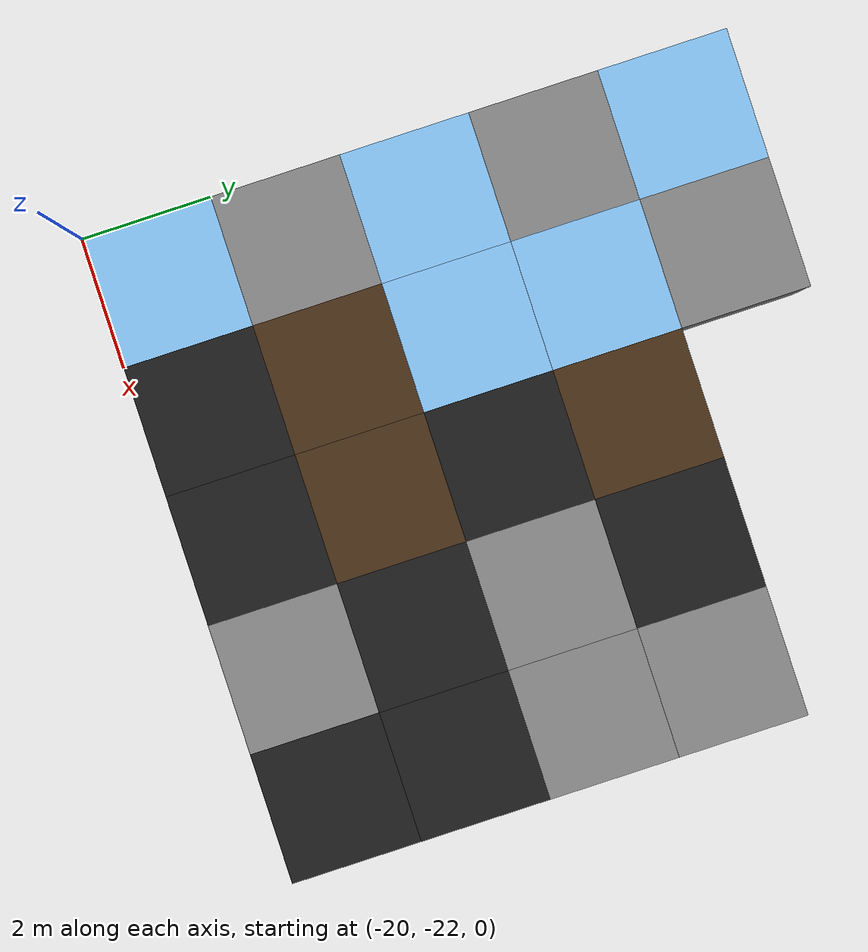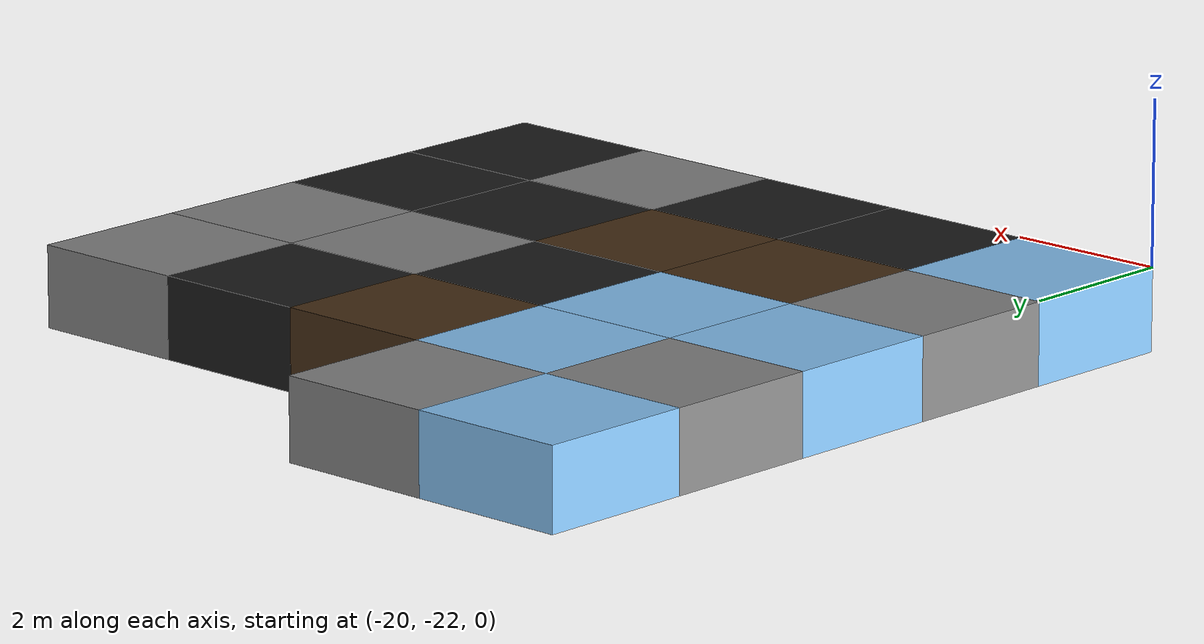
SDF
<sdf version="1.5">
 <world name="squares_example">
  <model name="tile_6_5">
   <static>true</static>
   <pose>-19.000 -21.000 -0.500 0 0 0</pose>
   <link name="link">
    <collision name="col">
     <geometry><box><size>2.0 2.0 1.0</size></box></geometry>
     <surface>
      <friction>
       <ode><mu>0.03</mu><mu2>0.02</mu2><fdir1>1 0 0</fdir1><slip1>0.03</slip1><slip2>0.03</slip2></ode>
       <torsional>
        <coefficient>0.005</coefficient>
        <use_patch_radius>false</use_patch_radius>
        <surface_radius>0.12</surface_radius>
        <ode><slip>0.01</slip></ode>
       </torsional>
      </friction>
      <bounce><restitution_coefficient>0.0</restitution_coefficient><threshold>0.1</threshold></bounce>
      <contact>
       <ode><kp>10000000.0</kp><kd>1000.0</kd><max_vel>0.01</max_vel><min_depth>0.0</min_depth></ode>
      </contact>
     </surface>
    </collision>
    <visual name="visual">
     <geometry><box><size>2.0 2.0 1.0</size></box></geometry>
     <material>
      <diffuse>0.55 0.80 1.00 1</diffuse>
      <ambient>0 0 0 0</ambient>
      <specular>0 0 0 1</specular>
      <emissive>0 0 0 1</emissive>
     </material>
    </visual>
   </link>
  </model>
  <model name="tile_7_5">
   <static>true</static>
   <pose>-17.000 -21.000 -0.500 0 0 0</pose>
   <link name="link">
    <collision name="col">
     <geometry><box><size>2.0 2.0 1.0</size></box></geometry>
     <surface>
      <friction>
       <ode><mu>0.4</mu><mu2>0.15</mu2><fdir1>1 0 0</fdir1><slip1>0.0</slip1><slip2>0.0</slip2></ode>
       <torsional>
        <coefficient>0.03</coefficient>
        <use_patch_radius>false</use_patch_radius>
        <surface_radius>0.12</surface_radius>
        <ode><slip>0.0</slip></ode>
       </torsional>
      </friction>
      <bounce><restitution_coefficient>0.0</restitution_coefficient><threshold>0.1</threshold></bounce>
      <contact>
       <ode><kp>1000000000.0</kp><kd>1000000.0</kd><max_vel>0.01</max_vel><min_depth>0.0</min_depth></ode>
      </contact>
     </surface>
    </collision>
    <visual name="visual">
     <geometry><box><size>2.0 2.0 1.0</size></box></geometry>
     <material>
      <diffuse>0.12 0.12 0.12 1</diffuse>
      <ambient>0 0 0 0</ambient>
      <specular>0 0 0 1</specular>
      <emissive>0 0 0 1</emissive>
     </material>
    </visual>
   </link>
  </model>
  <model name="tile_8_5">
   <static>true</static>
   <pose>-15.000 -21.000 -0.500 0 0 0</pose>
   <link name="link">
    <collision name="col">
     <geometry><box><size>2.0 2.0 1.0</size></box></geometry>
     <surface>
      <friction>
       <ode><mu>0.4</mu><mu2>0.15</mu2><fdir1>1 0 0</fdir1><slip1>0.0</slip1><slip2>0.0</slip2></ode>
       <torsional>
        <coefficient>0.03</coefficient>
        <use_patch_radius>false</use_patch_radius>
        <surface_radius>0.12</surface_radius>
        <ode><slip>0.0</slip></ode>
       </torsional>
      </friction>
      <bounce><restitution_coefficient>0.0</restitution_coefficient><threshold>0.1</threshold></bounce>
      <contact>
       <ode><kp>1000000000.0</kp><kd>1000000.0</kd><max_vel>0.01</max_vel><min_depth>0.0</min_depth></ode>
      </contact>
     </surface>
    </collision>
    <visual name="visual">
     <geometry><box><size>2.0 2.0 1.0</size></box></geometry>
     <material>
      <diffuse>0.12 0.12 0.12 1</diffuse>
      <ambient>0 0 0 0</ambient>
      <specular>0 0 0 1</specular>
      <emissive>0 0 0 1</emissive>
     </material>
    </visual>
   </link>
  </model>
  <model name="tile_9_5">
   <static>true</static>
   <pose>-13.000 -21.000 -0.500 0 0 0</pose>
   <link name="link">
    <collision name="col">
     <geometry><box><size>2.0 2.0 1.0</size></box></geometry>
     <surface>
      <friction>
       <ode><mu>0.8</mu><mu2>0.3</mu2><fdir1>1 0 0</fdir1><slip1>0.0</slip1><slip2>0.0</slip2></ode>
       <torsional>
        <coefficient>0.03</coefficient>
        <use_patch_radius>false</use_patch_radius>
        <surface_radius>0.12</surface_radius>
        <ode><slip>0.0</slip></ode>
       </torsional>
      </friction>
      <bounce><restitution_coefficient>0.0</restitution_coefficient><threshold>0.1</threshold></bounce>
      <contact>
       <ode><kp>10000000000.0</kp><kd>10000000.0</kd><max_vel>0.01</max_vel><min_depth>0.0</min_depth></ode>
      </contact>
     </surface>
    </collision>
    <visual name="visual">
     <geometry><box><size>2.0 2.0 1.0</size></box></geometry>
     <material>
      <diffuse>0.55 0.55 0.55 1</diffuse>
      <ambient>0 0 0 0</ambient>
      <specular>0 0 0 1</specular>
      <emissive>0 0 0 1</emissive>
     </material>
    </visual>
   </link>
  </model>
  <model name="tile_10_5">
   <static>true</static>
   <pose>-11.000 -21.000 -0.500 0 0 0</pose>
   <link name="link">
    <collision name="col">
     <geometry><box><size>2.0 2.0 1.0</size></box></geometry>
     <surface>
      <friction>
       <ode><mu>0.4</mu><mu2>0.15</mu2><fdir1>1 0 0</fdir1><slip1>0.0</slip1><slip2>0.0</slip2></ode>
       <torsional>
        <coefficient>0.03</coefficient>
        <use_patch_radius>false</use_patch_radius>
        <surface_radius>0.12</surface_radius>
        <ode><slip>0.0</slip></ode>
       </torsional>
      </friction>
      <bounce><restitution_coefficient>0.0</restitution_coefficient><threshold>0.1</threshold></bounce>
      <contact>
       <ode><kp>1000000000.0</kp><kd>1000000.0</kd><max_vel>0.01</max_vel><min_depth>0.0</min_depth></ode>
      </contact>
     </surface>
    </collision>
    <visual name="visual">
     <geometry><box><size>2.0 2.0 1.0</size></box></geometry>
     <material>
      <diffuse>0.12 0.12 0.12 1</diffuse>
      <ambient>0 0 0 0</ambient>
      <specular>0 0 0 1</specular>
      <emissive>0 0 0 1</emissive>
     </material>
    </visual>
   </link>
  </model>
  <model name="tile_6_6">
   <static>true</static>
   <pose>-19.000 -19.000 -0.500 0 0 0</pose>
   <link name="link">
    <collision name="col">
     <geometry><box><size>2.0 2.0 1.0</size></box></geometry>
     <surface>
      <friction>
       <ode><mu>0.8</mu><mu2>0.3</mu2><fdir1>1 0 0</fdir1><slip1>0.0</slip1><slip2>0.0</slip2></ode>
       <torsional>
        <coefficient>0.03</coefficient>
        <use_patch_radius>false</use_patch_radius>
        <surface_radius>0.12</surface_radius>
        <ode><slip>0.0</slip></ode>
       </torsional>
      </friction>
      <bounce><restitution_coefficient>0.0</restitution_coefficient><threshold>0.1</threshold></bounce>
      <contact>
       <ode><kp>10000000000.0</kp><kd>10000000.0</kd><max_vel>0.01</max_vel><min_depth>0.0</min_depth></ode>
      </contact>
     </surface>
    </collision>
    <visual name="visual">
     <geometry><box><size>2.0 2.0 1.0</size></box></geometry>
     <material>
      <diffuse>0.55 0.55 0.55 1</diffuse>
      <ambient>0 0 0 0</ambient>
      <specular>0 0 0 1</specular>
      <emissive>0 0 0 1</emissive>
     </material>
    </visual>
   </link>
  </model>
  <model name="tile_7_6">
   <static>true</static>
   <pose>-17.000 -19.000 -0.500 0 0 0</pose>
   <link name="link">
    <collision name="col">
     <geometry><box><size>2.0 2.0 1.0</size></box></geometry>
     <surface>
      <friction>
       <ode><mu>0.6</mu><mu2>0.4</mu2><fdir1>1 0 0</fdir1><slip1>0.08</slip1><slip2>0.08</slip2></ode>
       <torsional>
        <coefficient>0.03</coefficient>
        <use_patch_radius>false</use_patch_radius>
        <surface_radius>0.12</surface_radius>
        <ode><slip>0.0</slip></ode>
       </torsional>
      </friction>
      <bounce><restitution_coefficient>0.0</restitution_coefficient><threshold>0.1</threshold></bounce>
      <contact>
       <ode><kp>1000000.0</kp><kd>10000.0</kd><max_vel>0.01</max_vel><min_depth>0.0</min_depth></ode>
      </contact>
     </surface>
    </collision>
    <visual name="visual">
     <geometry><box><size>2.0 2.0 1.0</size></box></geometry>
     <material>
      <diffuse>0.30 0.20 0.10 1</diffuse>
      <ambient>0 0 0 0</ambient>
      <specular>0 0 0 1</specular>
      <emissive>0 0 0 1</emissive>
     </material>
    </visual>
   </link>
  </model>
  <model name="tile_8_6">
   <static>true</static>
   <pose>-15.000 -19.000 -0.500 0 0 0</pose>
   <link name="link">
    <collision name="col">
     <geometry><box><size>2.0 2.0 1.0</size></box></geometry>
     <surface>
      <friction>
       <ode><mu>0.6</mu><mu2>0.4</mu2><fdir1>1 0 0</fdir1><slip1>0.08</slip1><slip2>0.08</slip2></ode>
       <torsional>
        <coefficient>0.03</coefficient>
        <use_patch_radius>false</use_patch_radius>
        <surface_radius>0.12</surface_radius>
        <ode><slip>0.0</slip></ode>
       </torsional>
      </friction>
      <bounce><restitution_coefficient>0.0</restitution_coefficient><threshold>0.1</threshold></bounce>
      <contact>
       <ode><kp>1000000.0</kp><kd>10000.0</kd><max_vel>0.01</max_vel><min_depth>0.0</min_depth></ode>
      </contact>
     </surface>
    </collision>
    <visual name="visual">
     <geometry><box><size>2.0 2.0 1.0</size></box></geometry>
     <material>
      <diffuse>0.30 0.20 0.10 1</diffuse>
      <ambient>0 0 0 0</ambient>
      <specular>0 0 0 1</specular>
      <emissive>0 0 0 1</emissive>
     </material>
    </visual>
   </link>
  </model>
  <model name="tile_9_6">
   <static>true</static>
   <pose>-13.000 -19.000 -0.500 0 0 0</pose>
   <link name="link">
    <collision name="col">
     <geometry><box><size>2.0 2.0 1.0</size></box></geometry>
     <surface>
      <friction>
       <ode><mu>0.4</mu><mu2>0.15</mu2><fdir1>1 0 0</fdir1><slip1>0.0</slip1><slip2>0.0</slip2></ode>
       <torsional>
        <coefficient>0.03</coefficient>
        <use_patch_radius>false</use_patch_radius>
        <surface_radius>0.12</surface_radius>
        <ode><slip>0.0</slip></ode>
       </torsional>
      </friction>
      <bounce><restitution_coefficient>0.0</restitution_coefficient><threshold>0.1</threshold></bounce>
      <contact>
       <ode><kp>1000000000.0</kp><kd>1000000.0</kd><max_vel>0.01</max_vel><min_depth>0.0</min_depth></ode>
      </contact>
     </surface>
    </collision>
    <visual name="visual">
     <geometry><box><size>2.0 2.0 1.0</size></box></geometry>
     <material>
      <diffuse>0.12 0.12 0.12 1</diffuse>
      <ambient>0 0 0 0</ambient>
      <specular>0 0 0 1</specular>
      <emissive>0 0 0 1</emissive>
     </material>
    </visual>
   </link>
  </model>
  <model name="tile_10_6">
   <static>true</static>
   <pose>-11.000 -19.000 -0.500 0 0 0</pose>
   <link name="link">
    <collision name="col">
     <geometry><box><size>2.0 2.0 1.0</size></box></geometry>
     <surface>
      <friction>
       <ode><mu>0.4</mu><mu2>0.15</mu2><fdir1>1 0 0</fdir1><slip1>0.0</slip1><slip2>0.0</slip2></ode>
       <torsional>
        <coefficient>0.03</coefficient>
        <use_patch_radius>false</use_patch_radius>
        <surface_radius>0.12</surface_radius>
        <ode><slip>0.0</slip></ode>
       </torsional>
      </friction>
      <bounce><restitution_coefficient>0.0</restitution_coefficient><threshold>0.1</threshold></bounce>
      <contact>
       <ode><kp>1000000000.0</kp><kd>1000000.0</kd><max_vel>0.01</max_vel><min_depth>0.0</min_depth></ode>
      </contact>
     </surface>
    </collision>
    <visual name="visual">
     <geometry><box><size>2.0 2.0 1.0</size></box></geometry>
     <material>
      <diffuse>0.12 0.12 0.12 1</diffuse>
      <ambient>0 0 0 0</ambient>
      <specular>0 0 0 1</specular>
      <emissive>0 0 0 1</emissive>
     </material>
    </visual>
   </link>
  </model>
  <model name="tile_6_7">
   <static>true</static>
   <pose>-19.000 -17.000 -0.500 0 0 0</pose>
   <link name="link">
    <collision name="col">
     <geometry><box><size>2.0 2.0 1.0</size></box></geometry>
     <surface>
      <friction>
       <ode><mu>0.03</mu><mu2>0.02</mu2><fdir1>1 0 0</fdir1><slip1>0.03</slip1><slip2>0.03</slip2></ode>
       <torsional>
        <coefficient>0.005</coefficient>
        <use_patch_radius>false</use_patch_radius>
        <surface_radius>0.12</surface_radius>
        <ode><slip>0.01</slip></ode>
       </torsional>
      </friction>
      <bounce><restitution_coefficient>0.0</restitution_coefficient><threshold>0.1</threshold></bounce>
      <contact>
       <ode><kp>10000000.0</kp><kd>1000.0</kd><max_vel>0.01</max_vel><min_depth>0.0</min_depth></ode>
      </contact>
     </surface>
    </collision>
    <visual name="visual">
     <geometry><box><size>2.0 2.0 1.0</size></box></geometry>
     <material>
      <diffuse>0.55 0.80 1.00 1</diffuse>
      <ambient>0 0 0 0</ambient>
      <specular>0 0 0 1</specular>
      <emissive>0 0 0 1</emissive>
     </material>
    </visual>
   </link>
  </model>
  <model name="tile_7_7">
   <static>true</static>
   <pose>-17.000 -17.000 -0.500 0 0 0</pose>
   <link name="link">
    <collision name="col">
     <geometry><box><size>2.0 2.0 1.0</size></box></geometry>
     <surface>
      <friction>
       <ode><mu>0.03</mu><mu2>0.02</mu2><fdir1>1 0 0</fdir1><slip1>0.03</slip1><slip2>0.03</slip2></ode>
       <torsional>
        <coefficient>0.005</coefficient>
        <use_patch_radius>false</use_patch_radius>
        <surface_radius>0.12</surface_radius>
        <ode><slip>0.01</slip></ode>
       </torsional>
      </friction>
      <bounce><restitution_coefficient>0.0</restitution_coefficient><threshold>0.1</threshold></bounce>
      <contact>
       <ode><kp>10000000.0</kp><kd>1000.0</kd><max_vel>0.01</max_vel><min_depth>0.0</min_depth></ode>
      </contact>
     </surface>
    </collision>
    <visual name="visual">
     <geometry><box><size>2.0 2.0 1.0</size></box></geometry>
     <material>
      <diffuse>0.55 0.80 1.00 1</diffuse>
      <ambient>0 0 0 0</ambient>
      <specular>0 0 0 1</specular>
      <emissive>0 0 0 1</emissive>
     </material>
    </visual>
   </link>
  </model>
  <model name="tile_8_7">
   <static>true</static>
   <pose>-15.000 -17.000 -0.500 0 0 0</pose>
   <link name="link">
    <collision name="col">
     <geometry><box><size>2.0 2.0 1.0</size></box></geometry>
     <surface>
      <friction>
       <ode><mu>0.4</mu><mu2>0.15</mu2><fdir1>1 0 0</fdir1><slip1>0.0</slip1><slip2>0.0</slip2></ode>
       <torsional>
        <coefficient>0.03</coefficient>
        <use_patch_radius>false</use_patch_radius>
        <surface_radius>0.12</surface_radius>
        <ode><slip>0.0</slip></ode>
       </torsional>
      </friction>
      <bounce><restitution_coefficient>0.0</restitution_coefficient><threshold>0.1</threshold></bounce>
      <contact>
       <ode><kp>1000000000.0</kp><kd>1000000.0</kd><max_vel>0.01</max_vel><min_depth>0.0</min_depth></ode>
      </contact>
     </surface>
    </collision>
    <visual name="visual">
     <geometry><box><size>2.0 2.0 1.0</size></box></geometry>
     <material>
      <diffuse>0.12 0.12 0.12 1</diffuse>
      <ambient>0 0 0 0</ambient>
      <specular>0 0 0 1</specular>
      <emissive>0 0 0 1</emissive>
     </material>
    </visual>
   </link>
  </model>
  <model name="tile_9_7">
   <static>true</static>
   <pose>-13.000 -17.000 -0.500 0 0 0</pose>
   <link name="link">
    <collision name="col">
     <geometry><box><size>2.0 2.0 1.0</size></box></geometry>
     <surface>
      <friction>
       <ode><mu>0.8</mu><mu2>0.3</mu2><fdir1>1 0 0</fdir1><slip1>0.0</slip1><slip2>0.0</slip2></ode>
       <torsional>
        <coefficient>0.03</coefficient>
        <use_patch_radius>false</use_patch_radius>
        <surface_radius>0.12</surface_radius>
        <ode><slip>0.0</slip></ode>
       </torsional>
      </friction>
      <bounce><restitution_coefficient>0.0</restitution_coefficient><threshold>0.1</threshold></bounce>
      <contact>
       <ode><kp>10000000000.0</kp><kd>10000000.0</kd><max_vel>0.01</max_vel><min_depth>0.0</min_depth></ode>
      </contact>
     </surface>
    </collision>
    <visual name="visual">
     <geometry><box><size>2.0 2.0 1.0</size></box></geometry>
     <material>
      <diffuse>0.55 0.55 0.55 1</diffuse>
      <ambient>0 0 0 0</ambient>
      <specular>0 0 0 1</specular>
      <emissive>0 0 0 1</emissive>
     </material>
    </visual>
   </link>
  </model>
  <model name="tile_10_7">
   <static>true</static>
   <pose>-11.000 -17.000 -0.500 0 0 0</pose>
   <link name="link">
    <collision name="col">
     <geometry><box><size>2.0 2.0 1.0</size></box></geometry>
     <surface>
      <friction>
       <ode><mu>0.8</mu><mu2>0.3</mu2><fdir1>1 0 0</fdir1><slip1>0.0</slip1><slip2>0.0</slip2></ode>
       <torsional>
        <coefficient>0.03</coefficient>
        <use_patch_radius>false</use_patch_radius>
        <surface_radius>0.12</surface_radius>
        <ode><slip>0.0</slip></ode>
       </torsional>
      </friction>
      <bounce><restitution_coefficient>0.0</restitution_coefficient><threshold>0.1</threshold></bounce>
      <contact>
       <ode><kp>10000000000.0</kp><kd>10000000.0</kd><max_vel>0.01</max_vel><min_depth>0.0</min_depth></ode>
      </contact>
     </surface>
    </collision>
    <visual name="visual">
     <geometry><box><size>2.0 2.0 1.0</size></box></geometry>
     <material>
      <diffuse>0.55 0.55 0.55 1</diffuse>
      <ambient>0 0 0 0</ambient>
      <specular>0 0 0 1</specular>
      <emissive>0 0 0 1</emissive>
     </material>
    </visual>
   </link>
  </model>
  <model name="tile_6_8">
   <static>true</static>
   <pose>-19.000 -15.000 -0.500 0 0 0</pose>
   <link name="link">
    <collision name="col">
     <geometry><box><size>2.0 2.0 1.0</size></box></geometry>
     <surface>
      <friction>
       <ode><mu>0.8</mu><mu2>0.3</mu2><fdir1>1 0 0</fdir1><slip1>0.0</slip1><slip2>0.0</slip2></ode>
       <torsional>
        <coefficient>0.03</coefficient>
        <use_patch_radius>false</use_patch_radius>
        <surface_radius>0.12</surface_radius>
        <ode><slip>0.0</slip></ode>
       </torsional>
      </friction>
      <bounce><restitution_coefficient>0.0</restitution_coefficient><threshold>0.1</threshold></bounce>
      <contact>
       <ode><kp>10000000000.0</kp><kd>10000000.0</kd><max_vel>0.01</max_vel><min_depth>0.0</min_depth></ode>
      </contact>
     </surface>
    </collision>
    <visual name="visual">
     <geometry><box><size>2.0 2.0 1.0</size></box></geometry>
     <material>
      <diffuse>0.55 0.55 0.55 1</diffuse>
      <ambient>0 0 0 0</ambient>
      <specular>0 0 0 1</specular>
      <emissive>0 0 0 1</emissive>
     </material>
    </visual>
   </link>
  </model>
  <model name="tile_7_8">
   <static>true</static>
   <pose>-17.000 -15.000 -0.500 0 0 0</pose>
   <link name="link">
    <collision name="col">
     <geometry><box><size>2.0 2.0 1.0</size></box></geometry>
     <surface>
      <friction>
       <ode><mu>0.03</mu><mu2>0.02</mu2><fdir1>1 0 0</fdir1><slip1>0.03</slip1><slip2>0.03</slip2></ode>
       <torsional>
        <coefficient>0.005</coefficient>
        <use_patch_radius>false</use_patch_radius>
        <surface_radius>0.12</surface_radius>
        <ode><slip>0.01</slip></ode>
       </torsional>
      </friction>
      <bounce><restitution_coefficient>0.0</restitution_coefficient><threshold>0.1</threshold></bounce>
      <contact>
       <ode><kp>10000000.0</kp><kd>1000.0</kd><max_vel>0.01</max_vel><min_depth>0.0</min_depth></ode>
      </contact>
     </surface>
    </collision>
    <visual name="visual">
     <geometry><box><size>2.0 2.0 1.0</size></box></geometry>
     <material>
      <diffuse>0.55 0.80 1.00 1</diffuse>
      <ambient>0 0 0 0</ambient>
      <specular>0 0 0 1</specular>
      <emissive>0 0 0 1</emissive>
     </material>
    </visual>
   </link>
  </model>
  <model name="tile_8_8">
   <static>true</static>
   <pose>-15.000 -15.000 -0.500 0 0 0</pose>
   <link name="link">
    <collision name="col">
     <geometry><box><size>2.0 2.0 1.0</size></box></geometry>
     <surface>
      <friction>
       <ode><mu>0.6</mu><mu2>0.4</mu2><fdir1>1 0 0</fdir1><slip1>0.08</slip1><slip2>0.08</slip2></ode>
       <torsional>
        <coefficient>0.03</coefficient>
        <use_patch_radius>false</use_patch_radius>
        <surface_radius>0.12</surface_radius>
        <ode><slip>0.0</slip></ode>
       </torsional>
      </friction>
      <bounce><restitution_coefficient>0.0</restitution_coefficient><threshold>0.1</threshold></bounce>
      <contact>
       <ode><kp>1000000.0</kp><kd>10000.0</kd><max_vel>0.01</max_vel><min_depth>0.0</min_depth></ode>
      </contact>
     </surface>
    </collision>
    <visual name="visual">
     <geometry><box><size>2.0 2.0 1.0</size></box></geometry>
     <material>
      <diffuse>0.30 0.20 0.10 1</diffuse>
      <ambient>0 0 0 0</ambient>
      <specular>0 0 0 1</specular>
      <emissive>0 0 0 1</emissive>
     </material>
    </visual>
   </link>
  </model>
  <model name="tile_9_8">
   <static>true</static>
   <pose>-13.000 -15.000 -0.500 0 0 0</pose>
   <link name="link">
    <collision name="col">
     <geometry><box><size>2.0 2.0 1.0</size></box></geometry>
     <surface>
      <friction>
       <ode><mu>0.4</mu><mu2>0.15</mu2><fdir1>1 0 0</fdir1><slip1>0.0</slip1><slip2>0.0</slip2></ode>
       <torsional>
        <coefficient>0.03</coefficient>
        <use_patch_radius>false</use_patch_radius>
        <surface_radius>0.12</surface_radius>
        <ode><slip>0.0</slip></ode>
       </torsional>
      </friction>
      <bounce><restitution_coefficient>0.0</restitution_coefficient><threshold>0.1</threshold></bounce>
      <contact>
       <ode><kp>1000000000.0</kp><kd>1000000.0</kd><max_vel>0.01</max_vel><min_depth>0.0</min_depth></ode>
      </contact>
     </surface>
    </collision>
    <visual name="visual">
     <geometry><box><size>2.0 2.0 1.0</size></box></geometry>
     <material>
      <diffuse>0.12 0.12 0.12 1</diffuse>
      <ambient>0 0 0 0</ambient>
      <specular>0 0 0 1</specular>
      <emissive>0 0 0 1</emissive>
     </material>
    </visual>
   </link>
  </model>
  <model name="tile_10_8">
   <static>true</static>
   <pose>-11.000 -15.000 -0.500 0 0 0</pose>
   <link name="link">
    <collision name="col">
     <geometry><box><size>2.0 2.0 1.0</size></box></geometry>
     <surface>
      <friction>
       <ode><mu>0.8</mu><mu2>0.3</mu2><fdir1>1 0 0</fdir1><slip1>0.0</slip1><slip2>0.0</slip2></ode>
       <torsional>
        <coefficient>0.03</coefficient>
        <use_patch_radius>false</use_patch_radius>
        <surface_radius>0.12</surface_radius>
        <ode><slip>0.0</slip></ode>
       </torsional>
      </friction>
      <bounce><restitution_coefficient>0.0</restitution_coefficient><threshold>0.1</threshold></bounce>
      <contact>
       <ode><kp>10000000000.0</kp><kd>10000000.0</kd><max_vel>0.01</max_vel><min_depth>0.0</min_depth></ode>
      </contact>
     </surface>
    </collision>
    <visual name="visual">
     <geometry><box><size>2.0 2.0 1.0</size></box></geometry>
     <material>
      <diffuse>0.55 0.55 0.55 1</diffuse>
      <ambient>0 0 0 0</ambient>
      <specular>0 0 0 1</specular>
      <emissive>0 0 0 1</emissive>
     </material>
    </visual>
   </link>
  </model>
  <model name="tile_6_9">
   <static>true</static>
   <pose>-19.000 -13.000 -0.500 0 0 0</pose>
   <link name="link">
    <collision name="col">
     <geometry><box><size>2.0 2.0 1.0</size></box></geometry>
     <surface>
      <friction>
       <ode><mu>0.03</mu><mu2>0.02</mu2><fdir1>1 0 0</fdir1><slip1>0.03</slip1><slip2>0.03</slip2></ode>
       <torsional>
        <coefficient>0.005</coefficient>
        <use_patch_radius>false</use_patch_radius>
        <surface_radius>0.12</surface_radius>
        <ode><slip>0.01</slip></ode>
       </torsional>
      </friction>
      <bounce><restitution_coefficient>0.0</restitution_coefficient><threshold>0.1</threshold></bounce>
      <contact>
       <ode><kp>10000000.0</kp><kd>1000.0</kd><max_vel>0.01</max_vel><min_depth>0.0</min_depth></ode>
      </contact>
     </surface>
    </collision>
    <visual name="visual">
     <geometry><box><size>2.0 2.0 1.0</size></box></geometry>
     <material>
      <diffuse>0.55 0.80 1.00 1</diffuse>
      <ambient>0 0 0 0</ambient>
      <specular>0 0 0 1</specular>
      <emissive>0 0 0 1</emissive>
     </material>
    </visual>
   </link>
  </model>
  <model name="tile_7_9">
   <static>true</static>
   <pose>-17.000 -13.000 -0.500 0 0 0</pose>
   <link name="link">
    <collision name="col">
     <geometry><box><size>2.0 2.0 1.0</size></box></geometry>
     <surface>
      <friction>
       <ode><mu>0.8</mu><mu2>0.3</mu2><fdir1>1 0 0</fdir1><slip1>0.0</slip1><slip2>0.0</slip2></ode>
       <torsional>
        <coefficient>0.03</coefficient>
        <use_patch_radius>false</use_patch_radius>
        <surface_radius>0.12</surface_radius>
        <ode><slip>0.0</slip></ode>
       </torsional>
      </friction>
      <bounce><restitution_coefficient>0.0</restitution_coefficient><threshold>0.1</threshold></bounce>
      <contact>
       <ode><kp>10000000000.0</kp><kd>10000000.0</kd><max_vel>0.01</max_vel><min_depth>0.0</min_depth></ode>
      </contact>
     </surface>
    </collision>
    <visual name="visual">
     <geometry><box><size>2.0 2.0 1.0</size></box></geometry>
     <material>
      <diffuse>0.55 0.55 0.55 1</diffuse>
      <ambient>0 0 0 0</ambient>
      <specular>0 0 0 1</specular>
      <emissive>0 0 0 1</emissive>
     </material>
    </visual>
   </link>
  </model>
 </world>
</sdf>
